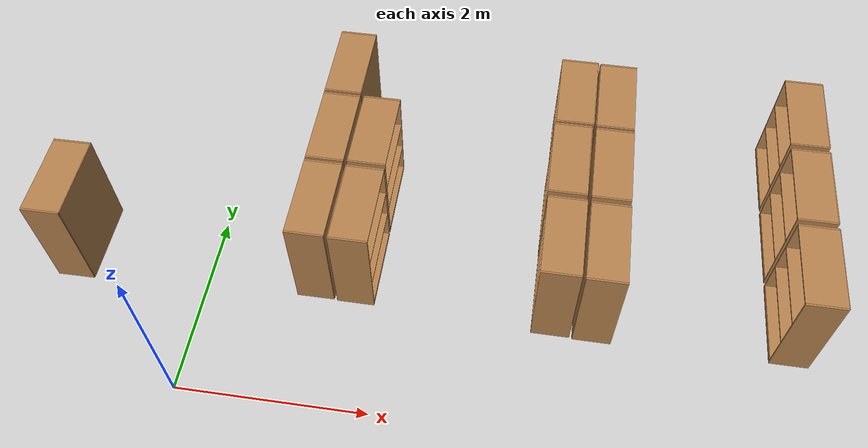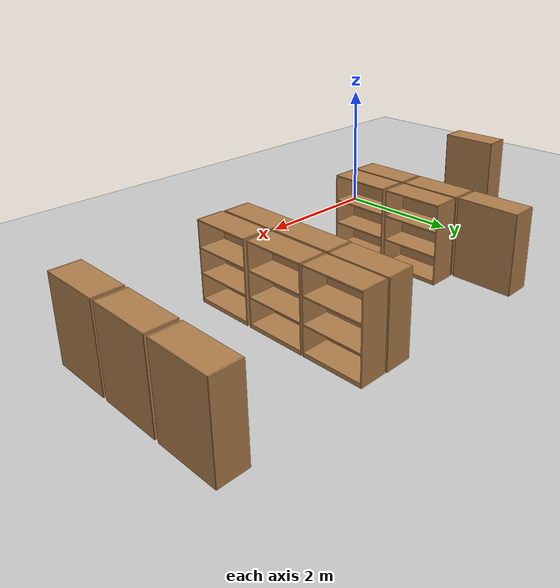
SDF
<sdf version="1.6">
 <world name="default">
  <model name="ground_plane">
   <static>1</static>
   <link name="link">
    <collision name="collision">
     <geometry><plane><normal>0 0 1</normal><size>100 100</size></plane></geometry>
     <surface>
      <contact><collide_bitmask>65535</collide_bitmask></contact>
      <friction><ode><mu>100</mu><mu2>50</mu2></ode></friction>
     </surface>
    </collision>
    <visual name="visual">
     <cast_shadows>0</cast_shadows>
     <geometry><plane><normal>0 0 1</normal><size>100 100</size></plane></geometry>
     <material>
      <script><uri>file://media/materials/scripts/gazebo.material</uri><name>Gazebo/Grey</name></script>
     </material>
    </visual>
   </link>
  </model>
  <model name="bookshelf_clone_9">
   <static>1</static>
   <link name="link">
    <inertial><mass>1</mass></inertial>
    <collision name="back">
     <pose>0 0.005 0.6 0 -0 0</pose>
     <geometry><box><size>0.9 0.01 1.2</size></box></geometry>
    </collision>
    <visual name="visual1">
     <pose>0 0.005 0.6 0 -0 0</pose>
     <geometry><box><size>0.9 0.01 1.2</size></box></geometry>
     <material>
      <script><uri>file://media/materials/scripts/gazebo.material</uri><name>Gazebo/Wood</name></script>
     </material>
    </visual>
    <collision name="left_side">
     <pose>0.45 -0.195 0.6 0 -0 0</pose>
     <geometry><box><size>0.02 0.4 1.2</size></box></geometry>
    </collision>
    <visual name="visual2">
     <pose>0.45 -0.195 0.6 0 -0 0</pose>
     <geometry><box><size>0.02 0.4 1.2</size></box></geometry>
     <material>
      <script><uri>file://media/materials/scripts/gazebo.material</uri><name>Gazebo/Wood</name></script>
     </material>
    </visual>
    <collision name="right_side">
     <pose>-0.45 -0.195 0.6 0 -0 0</pose>
     <geometry><box><size>0.02 0.4 1.2</size></box></geometry>
    </collision>
    <visual name="visual3">
     <pose>-0.45 -0.195 0.6 0 -0 0</pose>
     <geometry><box><size>0.02 0.4 1.2</size></box></geometry>
     <material>
      <script><uri>file://media/materials/scripts/gazebo.material</uri><name>Gazebo/Wood</name></script>
     </material>
    </visual>
    <collision name="bottom">
     <pose>0 -0.195 0.03 0 -0 0</pose>
     <geometry><box><size>0.88 0.4 0.06</size></box></geometry>
    </collision>
    <visual name="visual4">
     <pose>0 -0.195 0.03 0 -0 0</pose>
     <geometry><box><size>0.88 0.4 0.06</size></box></geometry>
     <material>
      <script><uri>file://media/materials/scripts/gazebo.material</uri><name>Gazebo/Wood</name></script>
     </material>
    </visual>
    <collision name="top">
     <pose>0 -0.195 1.19 0 -0 0</pose>
     <geometry><box><size>0.88 0.4 0.02</size></box></geometry>
    </collision>
    <visual name="visual5">
     <pose>0 -0.195 1.19 0 -0 0</pose>
     <geometry><box><size>0.88 0.4 0.02</size></box></geometry>
     <material>
      <script><uri>file://media/materials/scripts/gazebo.material</uri><name>Gazebo/Wood</name></script>
     </material>
    </visual>
    <collision name="low_shelf">
     <pose>0 -0.195 0.43 0 -0 0</pose>
     <geometry><box><size>0.88 0.4 0.02</size></box></geometry>
    </collision>
    <visual name="visual6">
     <pose>0 -0.195 0.43 0 -0 0</pose>
     <geometry><box><size>0.88 0.4 0.02</size></box></geometry>
     <material>
      <script><uri>file://media/materials/scripts/gazebo.material</uri><name>Gazebo/Wood</name></script>
     </material>
    </visual>
    <collision name="high_shelf">
     <pose>0 -0.195 0.8 0 -0 0</pose>
     <geometry><box><size>0.88 0.4 0.02</size></box></geometry>
    </collision>
    <visual name="visual7">
     <pose>0 -0.195 0.8 0 -0 0</pose>
     <geometry><box><size>0.88 0.4 0.02</size></box></geometry>
     <material>
      <script><uri>file://media/materials/scripts/gazebo.material</uri><name>Gazebo/Wood</name></script>
     </material>
    </visual>
   </link>
   <pose>-1.26454 1.58379 0 0 0 -1.56141</pose>
  </model>
  <model name="bookshelf_clone_102">
   <static>1</static>
   <link name="link">
    <inertial><mass>1</mass></inertial>
    <collision name="back">
     <pose>0 0.005 0.6 0 -0 0</pose>
     <geometry><box><size>0.9 0.01 1.2</size></box></geometry>
    </collision>
    <visual name="visual1">
     <pose>0 0.005 0.6 0 -0 0</pose>
     <geometry><box><size>0.9 0.01 1.2</size></box></geometry>
     <material>
      <script><uri>file://media/materials/scripts/gazebo.material</uri><name>Gazebo/Wood</name></script>
     </material>
    </visual>
    <collision name="left_side">
     <pose>0.45 -0.195 0.6 0 -0 0</pose>
     <geometry><box><size>0.02 0.4 1.2</size></box></geometry>
    </collision>
    <visual name="visual2">
     <pose>0.45 -0.195 0.6 0 -0 0</pose>
     <geometry><box><size>0.02 0.4 1.2</size></box></geometry>
     <material>
      <script><uri>file://media/materials/scripts/gazebo.material</uri><name>Gazebo/Wood</name></script>
     </material>
    </visual>
    <collision name="right_side">
     <pose>-0.45 -0.195 0.6 0 -0 0</pose>
     <geometry><box><size>0.02 0.4 1.2</size></box></geometry>
    </collision>
    <visual name="visual3">
     <pose>-0.45 -0.195 0.6 0 -0 0</pose>
     <geometry><box><size>0.02 0.4 1.2</size></box></geometry>
     <material>
      <script><uri>file://media/materials/scripts/gazebo.material</uri><name>Gazebo/Wood</name></script>
     </material>
    </visual>
    <collision name="bottom">
     <pose>0 -0.195 0.03 0 -0 0</pose>
     <geometry><box><size>0.88 0.4 0.06</size></box></geometry>
    </collision>
    <visual name="visual4">
     <pose>0 -0.195 0.03 0 -0 0</pose>
     <geometry><box><size>0.88 0.4 0.06</size></box></geometry>
     <material>
      <script><uri>file://media/materials/scripts/gazebo.material</uri><name>Gazebo/Wood</name></script>
     </material>
    </visual>
    <collision name="top">
     <pose>0 -0.195 1.19 0 -0 0</pose>
     <geometry><box><size>0.88 0.4 0.02</size></box></geometry>
    </collision>
    <visual name="visual5">
     <pose>0 -0.195 1.19 0 -0 0</pose>
     <geometry><box><size>0.88 0.4 0.02</size></box></geometry>
     <material>
      <script><uri>file://media/materials/scripts/gazebo.material</uri><name>Gazebo/Wood</name></script>
     </material>
    </visual>
    <collision name="low_shelf">
     <pose>0 -0.195 0.43 0 -0 0</pose>
     <geometry><box><size>0.88 0.4 0.02</size></box></geometry>
    </collision>
    <visual name="visual6">
     <pose>0 -0.195 0.43 0 -0 0</pose>
     <geometry><box><size>0.88 0.4 0.02</size></box></geometry>
     <material>
      <script><uri>file://media/materials/scripts/gazebo.material</uri><name>Gazebo/Wood</name></script>
     </material>
    </visual>
    <collision name="high_shelf">
     <pose>0 -0.195 0.8 0 -0 0</pose>
     <geometry><box><size>0.88 0.4 0.02</size></box></geometry>
    </collision>
    <visual name="visual7">
     <pose>0 -0.195 0.8 0 -0 0</pose>
     <geometry><box><size>0.88 0.4 0.02</size></box></geometry>
     <material>
      <script><uri>file://media/materials/scripts/gazebo.material</uri><name>Gazebo/Wood</name></script>
     </material>
    </visual>
   </link>
   <pose>1.37566 3.58937 0 0 0 -1.57004</pose>
  </model>
  <model name="bookshelf_clone_103">
   <static>1</static>
   <link name="link">
    <inertial><mass>1</mass></inertial>
    <collision name="back">
     <pose>0 0.005 0.6 0 -0 0</pose>
     <geometry><box><size>0.9 0.01 1.2</size></box></geometry>
    </collision>
    <visual name="visual1">
     <pose>0 0.005 0.6 0 -0 0</pose>
     <geometry><box><size>0.9 0.01 1.2</size></box></geometry>
     <material>
      <script><uri>file://media/materials/scripts/gazebo.material</uri><name>Gazebo/Wood</name></script>
     </material>
    </visual>
    <collision name="left_side">
     <pose>0.45 -0.195 0.6 0 -0 0</pose>
     <geometry><box><size>0.02 0.4 1.2</size></box></geometry>
    </collision>
    <visual name="visual2">
     <pose>0.45 -0.195 0.6 0 -0 0</pose>
     <geometry><box><size>0.02 0.4 1.2</size></box></geometry>
     <material>
      <script><uri>file://media/materials/scripts/gazebo.material</uri><name>Gazebo/Wood</name></script>
     </material>
    </visual>
    <collision name="right_side">
     <pose>-0.45 -0.195 0.6 0 -0 0</pose>
     <geometry><box><size>0.02 0.4 1.2</size></box></geometry>
    </collision>
    <visual name="visual3">
     <pose>-0.45 -0.195 0.6 0 -0 0</pose>
     <geometry><box><size>0.02 0.4 1.2</size></box></geometry>
     <material>
      <script><uri>file://media/materials/scripts/gazebo.material</uri><name>Gazebo/Wood</name></script>
     </material>
    </visual>
    <collision name="bottom">
     <pose>0 -0.195 0.03 0 -0 0</pose>
     <geometry><box><size>0.88 0.4 0.06</size></box></geometry>
    </collision>
    <visual name="visual4">
     <pose>0 -0.195 0.03 0 -0 0</pose>
     <geometry><box><size>0.88 0.4 0.06</size></box></geometry>
     <material>
      <script><uri>file://media/materials/scripts/gazebo.material</uri><name>Gazebo/Wood</name></script>
     </material>
    </visual>
    <collision name="top">
     <pose>0 -0.195 1.19 0 -0 0</pose>
     <geometry><box><size>0.88 0.4 0.02</size></box></geometry>
    </collision>
    <visual name="visual5">
     <pose>0 -0.195 1.19 0 -0 0</pose>
     <geometry><box><size>0.88 0.4 0.02</size></box></geometry>
     <material>
      <script><uri>file://media/materials/scripts/gazebo.material</uri><name>Gazebo/Wood</name></script>
     </material>
    </visual>
    <collision name="low_shelf">
     <pose>0 -0.195 0.43 0 -0 0</pose>
     <geometry><box><size>0.88 0.4 0.02</size></box></geometry>
    </collision>
    <visual name="visual6">
     <pose>0 -0.195 0.43 0 -0 0</pose>
     <geometry><box><size>0.88 0.4 0.02</size></box></geometry>
     <material>
      <script><uri>file://media/materials/scripts/gazebo.material</uri><name>Gazebo/Wood</name></script>
     </material>
    </visual>
    <collision name="high_shelf">
     <pose>0 -0.195 0.8 0 -0 0</pose>
     <geometry><box><size>0.88 0.4 0.02</size></box></geometry>
    </collision>
    <visual name="visual7">
     <pose>0 -0.195 0.8 0 -0 0</pose>
     <geometry><box><size>0.88 0.4 0.02</size></box></geometry>
     <material>
      <script><uri>file://media/materials/scripts/gazebo.material</uri><name>Gazebo/Wood</name></script>
     </material>
    </visual>
   </link>
   <pose>1.37773 2.64484 0 0 0 -1.57004</pose>
  </model>
  <model name="bookshelf_clone_104">
   <static>1</static>
   <link name="link">
    <inertial><mass>1</mass></inertial>
    <collision name="back">
     <pose>0 0.005 0.6 0 -0 0</pose>
     <geometry><box><size>0.9 0.01 1.2</size></box></geometry>
    </collision>
    <visual name="visual1">
     <pose>0 0.005 0.6 0 -0 0</pose>
     <geometry><box><size>0.9 0.01 1.2</size></box></geometry>
     <material>
      <script><uri>file://media/materials/scripts/gazebo.material</uri><name>Gazebo/Wood</name></script>
     </material>
    </visual>
    <collision name="left_side">
     <pose>0.45 -0.195 0.6 0 -0 0</pose>
     <geometry><box><size>0.02 0.4 1.2</size></box></geometry>
    </collision>
    <visual name="visual2">
     <pose>0.45 -0.195 0.6 0 -0 0</pose>
     <geometry><box><size>0.02 0.4 1.2</size></box></geometry>
     <material>
      <script><uri>file://media/materials/scripts/gazebo.material</uri><name>Gazebo/Wood</name></script>
     </material>
    </visual>
    <collision name="right_side">
     <pose>-0.45 -0.195 0.6 0 -0 0</pose>
     <geometry><box><size>0.02 0.4 1.2</size></box></geometry>
    </collision>
    <visual name="visual3">
     <pose>-0.45 -0.195 0.6 0 -0 0</pose>
     <geometry><box><size>0.02 0.4 1.2</size></box></geometry>
     <material>
      <script><uri>file://media/materials/scripts/gazebo.material</uri><name>Gazebo/Wood</name></script>
     </material>
    </visual>
    <collision name="bottom">
     <pose>0 -0.195 0.03 0 -0 0</pose>
     <geometry><box><size>0.88 0.4 0.06</size></box></geometry>
    </collision>
    <visual name="visual4">
     <pose>0 -0.195 0.03 0 -0 0</pose>
     <geometry><box><size>0.88 0.4 0.06</size></box></geometry>
     <material>
      <script><uri>file://media/materials/scripts/gazebo.material</uri><name>Gazebo/Wood</name></script>
     </material>
    </visual>
    <collision name="top">
     <pose>0 -0.195 1.19 0 -0 0</pose>
     <geometry><box><size>0.88 0.4 0.02</size></box></geometry>
    </collision>
    <visual name="visual5">
     <pose>0 -0.195 1.19 0 -0 0</pose>
     <geometry><box><size>0.88 0.4 0.02</size></box></geometry>
     <material>
      <script><uri>file://media/materials/scripts/gazebo.material</uri><name>Gazebo/Wood</name></script>
     </material>
    </visual>
    <collision name="low_shelf">
     <pose>0 -0.195 0.43 0 -0 0</pose>
     <geometry><box><size>0.88 0.4 0.02</size></box></geometry>
    </collision>
    <visual name="visual6">
     <pose>0 -0.195 0.43 0 -0 0</pose>
     <geometry><box><size>0.88 0.4 0.02</size></box></geometry>
     <material>
      <script><uri>file://media/materials/scripts/gazebo.material</uri><name>Gazebo/Wood</name></script>
     </material>
    </visual>
    <collision name="high_shelf">
     <pose>0 -0.195 0.8 0 -0 0</pose>
     <geometry><box><size>0.88 0.4 0.02</size></box></geometry>
    </collision>
    <visual name="visual7">
     <pose>0 -0.195 0.8 0 -0 0</pose>
     <geometry><box><size>0.88 0.4 0.02</size></box></geometry>
     <material>
      <script><uri>file://media/materials/scripts/gazebo.material</uri><name>Gazebo/Wood</name></script>
     </material>
    </visual>
   </link>
   <pose>1.37981 1.7003 0 0 0 -1.57004</pose>
  </model>
  <model name="bookshelf_clone_109">
   <static>1</static>
   <link name="link">
    <inertial><mass>1</mass></inertial>
    <collision name="back">
     <pose>0 0.005 0.6 0 -0 0</pose>
     <geometry><box><size>0.9 0.01 1.2</size></box></geometry>
    </collision>
    <visual name="visual1">
     <pose>0 0.005 0.6 0 -0 0</pose>
     <geometry><box><size>0.9 0.01 1.2</size></box></geometry>
     <material>
      <script><uri>file://media/materials/scripts/gazebo.material</uri><name>Gazebo/Wood</name></script>
     </material>
    </visual>
    <collision name="left_side">
     <pose>0.45 -0.195 0.6 0 -0 0</pose>
     <geometry><box><size>0.02 0.4 1.2</size></box></geometry>
    </collision>
    <visual name="visual2">
     <pose>0.45 -0.195 0.6 0 -0 0</pose>
     <geometry><box><size>0.02 0.4 1.2</size></box></geometry>
     <material>
      <script><uri>file://media/materials/scripts/gazebo.material</uri><name>Gazebo/Wood</name></script>
     </material>
    </visual>
    <collision name="right_side">
     <pose>-0.45 -0.195 0.6 0 -0 0</pose>
     <geometry><box><size>0.02 0.4 1.2</size></box></geometry>
    </collision>
    <visual name="visual3">
     <pose>-0.45 -0.195 0.6 0 -0 0</pose>
     <geometry><box><size>0.02 0.4 1.2</size></box></geometry>
     <material>
      <script><uri>file://media/materials/scripts/gazebo.material</uri><name>Gazebo/Wood</name></script>
     </material>
    </visual>
    <collision name="bottom">
     <pose>0 -0.195 0.03 0 -0 0</pose>
     <geometry><box><size>0.88 0.4 0.06</size></box></geometry>
    </collision>
    <visual name="visual4">
     <pose>0 -0.195 0.03 0 -0 0</pose>
     <geometry><box><size>0.88 0.4 0.06</size></box></geometry>
     <material>
      <script><uri>file://media/materials/scripts/gazebo.material</uri><name>Gazebo/Wood</name></script>
     </material>
    </visual>
    <collision name="top">
     <pose>0 -0.195 1.19 0 -0 0</pose>
     <geometry><box><size>0.88 0.4 0.02</size></box></geometry>
    </collision>
    <visual name="visual5">
     <pose>0 -0.195 1.19 0 -0 0</pose>
     <geometry><box><size>0.88 0.4 0.02</size></box></geometry>
     <material>
      <script><uri>file://media/materials/scripts/gazebo.material</uri><name>Gazebo/Wood</name></script>
     </material>
    </visual>
    <collision name="low_shelf">
     <pose>0 -0.195 0.43 0 -0 0</pose>
     <geometry><box><size>0.88 0.4 0.02</size></box></geometry>
    </collision>
    <visual name="visual6">
     <pose>0 -0.195 0.43 0 -0 0</pose>
     <geometry><box><size>0.88 0.4 0.02</size></box></geometry>
     <material>
      <script><uri>file://media/materials/scripts/gazebo.material</uri><name>Gazebo/Wood</name></script>
     </material>
    </visual>
    <collision name="high_shelf">
     <pose>0 -0.195 0.8 0 -0 0</pose>
     <geometry><box><size>0.88 0.4 0.02</size></box></geometry>
    </collision>
    <visual name="visual7">
     <pose>0 -0.195 0.8 0 -0 0</pose>
     <geometry><box><size>0.88 0.4 0.02</size></box></geometry>
     <material>
      <script><uri>file://media/materials/scripts/gazebo.material</uri><name>Gazebo/Wood</name></script>
     </material>
    </visual>
   </link>
   <pose>3.90591 3.51234 0 0 0 -1.57004</pose>
  </model>
  <model name="bookshelf_clone_110">
   <static>1</static>
   <link name="link">
    <inertial><mass>1</mass></inertial>
    <collision name="back">
     <pose>0 0.005 0.6 0 -0 0</pose>
     <geometry><box><size>0.9 0.01 1.2</size></box></geometry>
    </collision>
    <visual name="visual1">
     <pose>0 0.005 0.6 0 -0 0</pose>
     <geometry><box><size>0.9 0.01 1.2</size></box></geometry>
     <material>
      <script><uri>file://media/materials/scripts/gazebo.material</uri><name>Gazebo/Wood</name></script>
     </material>
    </visual>
    <collision name="left_side">
     <pose>0.45 -0.195 0.6 0 -0 0</pose>
     <geometry><box><size>0.02 0.4 1.2</size></box></geometry>
    </collision>
    <visual name="visual2">
     <pose>0.45 -0.195 0.6 0 -0 0</pose>
     <geometry><box><size>0.02 0.4 1.2</size></box></geometry>
     <material>
      <script><uri>file://media/materials/scripts/gazebo.material</uri><name>Gazebo/Wood</name></script>
     </material>
    </visual>
    <collision name="right_side">
     <pose>-0.45 -0.195 0.6 0 -0 0</pose>
     <geometry><box><size>0.02 0.4 1.2</size></box></geometry>
    </collision>
    <visual name="visual3">
     <pose>-0.45 -0.195 0.6 0 -0 0</pose>
     <geometry><box><size>0.02 0.4 1.2</size></box></geometry>
     <material>
      <script><uri>file://media/materials/scripts/gazebo.material</uri><name>Gazebo/Wood</name></script>
     </material>
    </visual>
    <collision name="bottom">
     <pose>0 -0.195 0.03 0 -0 0</pose>
     <geometry><box><size>0.88 0.4 0.06</size></box></geometry>
    </collision>
    <visual name="visual4">
     <pose>0 -0.195 0.03 0 -0 0</pose>
     <geometry><box><size>0.88 0.4 0.06</size></box></geometry>
     <material>
      <script><uri>file://media/materials/scripts/gazebo.material</uri><name>Gazebo/Wood</name></script>
     </material>
    </visual>
    <collision name="top">
     <pose>0 -0.195 1.19 0 -0 0</pose>
     <geometry><box><size>0.88 0.4 0.02</size></box></geometry>
    </collision>
    <visual name="visual5">
     <pose>0 -0.195 1.19 0 -0 0</pose>
     <geometry><box><size>0.88 0.4 0.02</size></box></geometry>
     <material>
      <script><uri>file://media/materials/scripts/gazebo.material</uri><name>Gazebo/Wood</name></script>
     </material>
    </visual>
    <collision name="low_shelf">
     <pose>0 -0.195 0.43 0 -0 0</pose>
     <geometry><box><size>0.88 0.4 0.02</size></box></geometry>
    </collision>
    <visual name="visual6">
     <pose>0 -0.195 0.43 0 -0 0</pose>
     <geometry><box><size>0.88 0.4 0.02</size></box></geometry>
     <material>
      <script><uri>file://media/materials/scripts/gazebo.material</uri><name>Gazebo/Wood</name></script>
     </material>
    </visual>
    <collision name="high_shelf">
     <pose>0 -0.195 0.8 0 -0 0</pose>
     <geometry><box><size>0.88 0.4 0.02</size></box></geometry>
    </collision>
    <visual name="visual7">
     <pose>0 -0.195 0.8 0 -0 0</pose>
     <geometry><box><size>0.88 0.4 0.02</size></box></geometry>
     <material>
      <script><uri>file://media/materials/scripts/gazebo.material</uri><name>Gazebo/Wood</name></script>
     </material>
    </visual>
   </link>
   <pose>3.89062 2.57464 0 0 0 -1.57004</pose>
  </model>
  <model name="bookshelf_clone_111">
   <static>1</static>
   <link name="link">
    <inertial><mass>1</mass></inertial>
    <collision name="back">
     <pose>0 0.005 0.6 0 -0 0</pose>
     <geometry><box><size>0.9 0.01 1.2</size></box></geometry>
    </collision>
    <visual name="visual1">
     <pose>0 0.005 0.6 0 -0 0</pose>
     <geometry><box><size>0.9 0.01 1.2</size></box></geometry>
     <material>
      <script><uri>file://media/materials/scripts/gazebo.material</uri><name>Gazebo/Wood</name></script>
     </material>
    </visual>
    <collision name="left_side">
     <pose>0.45 -0.195 0.6 0 -0 0</pose>
     <geometry><box><size>0.02 0.4 1.2</size></box></geometry>
    </collision>
    <visual name="visual2">
     <pose>0.45 -0.195 0.6 0 -0 0</pose>
     <geometry><box><size>0.02 0.4 1.2</size></box></geometry>
     <material>
      <script><uri>file://media/materials/scripts/gazebo.material</uri><name>Gazebo/Wood</name></script>
     </material>
    </visual>
    <collision name="right_side">
     <pose>-0.45 -0.195 0.6 0 -0 0</pose>
     <geometry><box><size>0.02 0.4 1.2</size></box></geometry>
    </collision>
    <visual name="visual3">
     <pose>-0.45 -0.195 0.6 0 -0 0</pose>
     <geometry><box><size>0.02 0.4 1.2</size></box></geometry>
     <material>
      <script><uri>file://media/materials/scripts/gazebo.material</uri><name>Gazebo/Wood</name></script>
     </material>
    </visual>
    <collision name="bottom">
     <pose>0 -0.195 0.03 0 -0 0</pose>
     <geometry><box><size>0.88 0.4 0.06</size></box></geometry>
    </collision>
    <visual name="visual4">
     <pose>0 -0.195 0.03 0 -0 0</pose>
     <geometry><box><size>0.88 0.4 0.06</size></box></geometry>
     <material>
      <script><uri>file://media/materials/scripts/gazebo.material</uri><name>Gazebo/Wood</name></script>
     </material>
    </visual>
    <collision name="top">
     <pose>0 -0.195 1.19 0 -0 0</pose>
     <geometry><box><size>0.88 0.4 0.02</size></box></geometry>
    </collision>
    <visual name="visual5">
     <pose>0 -0.195 1.19 0 -0 0</pose>
     <geometry><box><size>0.88 0.4 0.02</size></box></geometry>
     <material>
      <script><uri>file://media/materials/scripts/gazebo.material</uri><name>Gazebo/Wood</name></script>
     </material>
    </visual>
    <collision name="low_shelf">
     <pose>0 -0.195 0.43 0 -0 0</pose>
     <geometry><box><size>0.88 0.4 0.02</size></box></geometry>
    </collision>
    <visual name="visual6">
     <pose>0 -0.195 0.43 0 -0 0</pose>
     <geometry><box><size>0.88 0.4 0.02</size></box></geometry>
     <material>
      <script><uri>file://media/materials/scripts/gazebo.material</uri><name>Gazebo/Wood</name></script>
     </material>
    </visual>
    <collision name="high_shelf">
     <pose>0 -0.195 0.8 0 -0 0</pose>
     <geometry><box><size>0.88 0.4 0.02</size></box></geometry>
    </collision>
    <visual name="visual7">
     <pose>0 -0.195 0.8 0 -0 0</pose>
     <geometry><box><size>0.88 0.4 0.02</size></box></geometry>
     <material>
      <script><uri>file://media/materials/scripts/gazebo.material</uri><name>Gazebo/Wood</name></script>
     </material>
    </visual>
   </link>
   <pose>3.89594 1.60842 0 0 0 -1.57004</pose>
  </model>
  <model name="bookshelf_clone_116">
   <static>1</static>
   <link name="link">
    <inertial><mass>1</mass></inertial>
    <collision name="back">
     <pose>0 0.005 0.6 0 -0 0</pose>
     <geometry><box><size>0.9 0.01 1.2</size></box></geometry>
    </collision>
    <visual name="visual1">
     <pose>0 0.005 0.6 0 -0 0</pose>
     <geometry><box><size>0.9 0.01 1.2</size></box></geometry>
     <material>
      <script><uri>file://media/materials/scripts/gazebo.material</uri><name>Gazebo/Wood</name></script>
     </material>
    </visual>
    <collision name="left_side">
     <pose>0.45 -0.195 0.6 0 -0 0</pose>
     <geometry><box><size>0.02 0.4 1.2</size></box></geometry>
    </collision>
    <visual name="visual2">
     <pose>0.45 -0.195 0.6 0 -0 0</pose>
     <geometry><box><size>0.02 0.4 1.2</size></box></geometry>
     <material>
      <script><uri>file://media/materials/scripts/gazebo.material</uri><name>Gazebo/Wood</name></script>
     </material>
    </visual>
    <collision name="right_side">
     <pose>-0.45 -0.195 0.6 0 -0 0</pose>
     <geometry><box><size>0.02 0.4 1.2</size></box></geometry>
    </collision>
    <visual name="visual3">
     <pose>-0.45 -0.195 0.6 0 -0 0</pose>
     <geometry><box><size>0.02 0.4 1.2</size></box></geometry>
     <material>
      <script><uri>file://media/materials/scripts/gazebo.material</uri><name>Gazebo/Wood</name></script>
     </material>
    </visual>
    <collision name="bottom">
     <pose>0 -0.195 0.03 0 -0 0</pose>
     <geometry><box><size>0.88 0.4 0.06</size></box></geometry>
    </collision>
    <visual name="visual4">
     <pose>0 -0.195 0.03 0 -0 0</pose>
     <geometry><box><size>0.88 0.4 0.06</size></box></geometry>
     <material>
      <script><uri>file://media/materials/scripts/gazebo.material</uri><name>Gazebo/Wood</name></script>
     </material>
    </visual>
    <collision name="top">
     <pose>0 -0.195 1.19 0 -0 0</pose>
     <geometry><box><size>0.88 0.4 0.02</size></box></geometry>
    </collision>
    <visual name="visual5">
     <pose>0 -0.195 1.19 0 -0 0</pose>
     <geometry><box><size>0.88 0.4 0.02</size></box></geometry>
     <material>
      <script><uri>file://media/materials/scripts/gazebo.material</uri><name>Gazebo/Wood</name></script>
     </material>
    </visual>
    <collision name="low_shelf">
     <pose>0 -0.195 0.43 0 -0 0</pose>
     <geometry><box><size>0.88 0.4 0.02</size></box></geometry>
    </collision>
    <visual name="visual6">
     <pose>0 -0.195 0.43 0 -0 0</pose>
     <geometry><box><size>0.88 0.4 0.02</size></box></geometry>
     <material>
      <script><uri>file://media/materials/scripts/gazebo.material</uri><name>Gazebo/Wood</name></script>
     </material>
    </visual>
    <collision name="high_shelf">
     <pose>0 -0.195 0.8 0 -0 0</pose>
     <geometry><box><size>0.88 0.4 0.02</size></box></geometry>
    </collision>
    <visual name="visual7">
     <pose>0 -0.195 0.8 0 -0 0</pose>
     <geometry><box><size>0.88 0.4 0.02</size></box></geometry>
     <material>
      <script><uri>file://media/materials/scripts/gazebo.material</uri><name>Gazebo/Wood</name></script>
     </material>
    </visual>
   </link>
   <pose>6.34368 3.5484 0 0 0 -1.57004</pose>
  </model>
  <model name="bookshelf_clone_117">
   <static>1</static>
   <link name="link">
    <inertial><mass>1</mass></inertial>
    <collision name="back">
     <pose>0 0.005 0.6 0 -0 0</pose>
     <geometry><box><size>0.9 0.01 1.2</size></box></geometry>
    </collision>
    <visual name="visual1">
     <pose>0 0.005 0.6 0 -0 0</pose>
     <geometry><box><size>0.9 0.01 1.2</size></box></geometry>
     <material>
      <script><uri>file://media/materials/scripts/gazebo.material</uri><name>Gazebo/Wood</name></script>
     </material>
    </visual>
    <collision name="left_side">
     <pose>0.45 -0.195 0.6 0 -0 0</pose>
     <geometry><box><size>0.02 0.4 1.2</size></box></geometry>
    </collision>
    <visual name="visual2">
     <pose>0.45 -0.195 0.6 0 -0 0</pose>
     <geometry><box><size>0.02 0.4 1.2</size></box></geometry>
     <material>
      <script><uri>file://media/materials/scripts/gazebo.material</uri><name>Gazebo/Wood</name></script>
     </material>
    </visual>
    <collision name="right_side">
     <pose>-0.45 -0.195 0.6 0 -0 0</pose>
     <geometry><box><size>0.02 0.4 1.2</size></box></geometry>
    </collision>
    <visual name="visual3">
     <pose>-0.45 -0.195 0.6 0 -0 0</pose>
     <geometry><box><size>0.02 0.4 1.2</size></box></geometry>
     <material>
      <script><uri>file://media/materials/scripts/gazebo.material</uri><name>Gazebo/Wood</name></script>
     </material>
    </visual>
    <collision name="bottom">
     <pose>0 -0.195 0.03 0 -0 0</pose>
     <geometry><box><size>0.88 0.4 0.06</size></box></geometry>
    </collision>
    <visual name="visual4">
     <pose>0 -0.195 0.03 0 -0 0</pose>
     <geometry><box><size>0.88 0.4 0.06</size></box></geometry>
     <material>
      <script><uri>file://media/materials/scripts/gazebo.material</uri><name>Gazebo/Wood</name></script>
     </material>
    </visual>
    <collision name="top">
     <pose>0 -0.195 1.19 0 -0 0</pose>
     <geometry><box><size>0.88 0.4 0.02</size></box></geometry>
    </collision>
    <visual name="visual5">
     <pose>0 -0.195 1.19 0 -0 0</pose>
     <geometry><box><size>0.88 0.4 0.02</size></box></geometry>
     <material>
      <script><uri>file://media/materials/scripts/gazebo.material</uri><name>Gazebo/Wood</name></script>
     </material>
    </visual>
    <collision name="low_shelf">
     <pose>0 -0.195 0.43 0 -0 0</pose>
     <geometry><box><size>0.88 0.4 0.02</size></box></geometry>
    </collision>
    <visual name="visual6">
     <pose>0 -0.195 0.43 0 -0 0</pose>
     <geometry><box><size>0.88 0.4 0.02</size></box></geometry>
     <material>
      <script><uri>file://media/materials/scripts/gazebo.material</uri><name>Gazebo/Wood</name></script>
     </material>
    </visual>
    <collision name="high_shelf">
     <pose>0 -0.195 0.8 0 -0 0</pose>
     <geometry><box><size>0.88 0.4 0.02</size></box></geometry>
    </collision>
    <visual name="visual7">
     <pose>0 -0.195 0.8 0 -0 0</pose>
     <geometry><box><size>0.88 0.4 0.02</size></box></geometry>
     <material>
      <script><uri>file://media/materials/scripts/gazebo.material</uri><name>Gazebo/Wood</name></script>
     </material>
    </visual>
   </link>
   <pose>6.34372 2.58136 0 0 0 -1.57004</pose>
  </model>
  <model name="bookshelf_clone_118">
   <static>1</static>
   <link name="link">
    <inertial><mass>1</mass></inertial>
    <collision name="back">
     <pose>0 0.005 0.6 0 -0 0</pose>
     <geometry><box><size>0.9 0.01 1.2</size></box></geometry>
    </collision>
    <visual name="visual1">
     <pose>0 0.005 0.6 0 -0 0</pose>
     <geometry><box><size>0.9 0.01 1.2</size></box></geometry>
     <material>
      <script><uri>file://media/materials/scripts/gazebo.material</uri><name>Gazebo/Wood</name></script>
     </material>
    </visual>
    <collision name="left_side">
     <pose>0.45 -0.195 0.6 0 -0 0</pose>
     <geometry><box><size>0.02 0.4 1.2</size></box></geometry>
    </collision>
    <visual name="visual2">
     <pose>0.45 -0.195 0.6 0 -0 0</pose>
     <geometry><box><size>0.02 0.4 1.2</size></box></geometry>
     <material>
      <script><uri>file://media/materials/scripts/gazebo.material</uri><name>Gazebo/Wood</name></script>
     </material>
    </visual>
    <collision name="right_side">
     <pose>-0.45 -0.195 0.6 0 -0 0</pose>
     <geometry><box><size>0.02 0.4 1.2</size></box></geometry>
    </collision>
    <visual name="visual3">
     <pose>-0.45 -0.195 0.6 0 -0 0</pose>
     <geometry><box><size>0.02 0.4 1.2</size></box></geometry>
     <material>
      <script><uri>file://media/materials/scripts/gazebo.material</uri><name>Gazebo/Wood</name></script>
     </material>
    </visual>
    <collision name="bottom">
     <pose>0 -0.195 0.03 0 -0 0</pose>
     <geometry><box><size>0.88 0.4 0.06</size></box></geometry>
    </collision>
    <visual name="visual4">
     <pose>0 -0.195 0.03 0 -0 0</pose>
     <geometry><box><size>0.88 0.4 0.06</size></box></geometry>
     <material>
      <script><uri>file://media/materials/scripts/gazebo.material</uri><name>Gazebo/Wood</name></script>
     </material>
    </visual>
    <collision name="top">
     <pose>0 -0.195 1.19 0 -0 0</pose>
     <geometry><box><size>0.88 0.4 0.02</size></box></geometry>
    </collision>
    <visual name="visual5">
     <pose>0 -0.195 1.19 0 -0 0</pose>
     <geometry><box><size>0.88 0.4 0.02</size></box></geometry>
     <material>
      <script><uri>file://media/materials/scripts/gazebo.material</uri><name>Gazebo/Wood</name></script>
     </material>
    </visual>
    <collision name="low_shelf">
     <pose>0 -0.195 0.43 0 -0 0</pose>
     <geometry><box><size>0.88 0.4 0.02</size></box></geometry>
    </collision>
    <visual name="visual6">
     <pose>0 -0.195 0.43 0 -0 0</pose>
     <geometry><box><size>0.88 0.4 0.02</size></box></geometry>
     <material>
      <script><uri>file://media/materials/scripts/gazebo.material</uri><name>Gazebo/Wood</name></script>
     </material>
    </visual>
    <collision name="high_shelf">
     <pose>0 -0.195 0.8 0 -0 0</pose>
     <geometry><box><size>0.88 0.4 0.02</size></box></geometry>
    </collision>
    <visual name="visual7">
     <pose>0 -0.195 0.8 0 -0 0</pose>
     <geometry><box><size>0.88 0.4 0.02</size></box></geometry>
     <material>
      <script><uri>file://media/materials/scripts/gazebo.material</uri><name>Gazebo/Wood</name></script>
     </material>
    </visual>
   </link>
   <pose>6.34379 1.61431 0 0 0 -1.57004</pose>
  </model>
  <model name="bookshelf_clone_125">
   <static>1</static>
   <link name="link">
    <inertial><mass>1</mass></inertial>
    <collision name="back">
     <pose>0 0.005 0.6 0 -0 0</pose>
     <geometry><box><size>0.9 0.01 1.2</size></box></geometry>
    </collision>
    <visual name="visual1">
     <pose>0 0.005 0.6 0 -0 0</pose>
     <geometry><box><size>0.9 0.01 1.2</size></box></geometry>
     <material>
      <script><uri>file://media/materials/scripts/gazebo.material</uri><name>Gazebo/Wood</name></script>
     </material>
    </visual>
    <collision name="left_side">
     <pose>0.45 -0.195 0.6 0 -0 0</pose>
     <geometry><box><size>0.02 0.4 1.2</size></box></geometry>
    </collision>
    <visual name="visual2">
     <pose>0.45 -0.195 0.6 0 -0 0</pose>
     <geometry><box><size>0.02 0.4 1.2</size></box></geometry>
     <material>
      <script><uri>file://media/materials/scripts/gazebo.material</uri><name>Gazebo/Wood</name></script>
     </material>
    </visual>
    <collision name="right_side">
     <pose>-0.45 -0.195 0.6 0 -0 0</pose>
     <geometry><box><size>0.02 0.4 1.2</size></box></geometry>
    </collision>
    <visual name="visual3">
     <pose>-0.45 -0.195 0.6 0 -0 0</pose>
     <geometry><box><size>0.02 0.4 1.2</size></box></geometry>
     <material>
      <script><uri>file://media/materials/scripts/gazebo.material</uri><name>Gazebo/Wood</name></script>
     </material>
    </visual>
    <collision name="bottom">
     <pose>0 -0.195 0.03 0 -0 0</pose>
     <geometry><box><size>0.88 0.4 0.06</size></box></geometry>
    </collision>
    <visual name="visual4">
     <pose>0 -0.195 0.03 0 -0 0</pose>
     <geometry><box><size>0.88 0.4 0.06</size></box></geometry>
     <material>
      <script><uri>file://media/materials/scripts/gazebo.material</uri><name>Gazebo/Wood</name></script>
     </material>
    </visual>
    <collision name="top">
     <pose>0 -0.195 1.19 0 -0 0</pose>
     <geometry><box><size>0.88 0.4 0.02</size></box></geometry>
    </collision>
    <visual name="visual5">
     <pose>0 -0.195 1.19 0 -0 0</pose>
     <geometry><box><size>0.88 0.4 0.02</size></box></geometry>
     <material>
      <script><uri>file://media/materials/scripts/gazebo.material</uri><name>Gazebo/Wood</name></script>
     </material>
    </visual>
    <collision name="low_shelf">
     <pose>0 -0.195 0.43 0 -0 0</pose>
     <geometry><box><size>0.88 0.4 0.02</size></box></geometry>
    </collision>
    <visual name="visual6">
     <pose>0 -0.195 0.43 0 -0 0</pose>
     <geometry><box><size>0.88 0.4 0.02</size></box></geometry>
     <material>
      <script><uri>file://media/materials/scripts/gazebo.material</uri><name>Gazebo/Wood</name></script>
     </material>
    </visual>
    <collision name="high_shelf">
     <pose>0 -0.195 0.8 0 -0 0</pose>
     <geometry><box><size>0.88 0.4 0.02</size></box></geometry>
    </collision>
    <visual name="visual7">
     <pose>0 -0.195 0.8 0 -0 0</pose>
     <geometry><box><size>0.88 0.4 0.02</size></box></geometry>
     <material>
      <script><uri>file://media/materials/scripts/gazebo.material</uri><name>Gazebo/Wood</name></script>
     </material>
    </visual>
   </link>
   <pose>1.42833 2.65086 0 0 -0 1.56949</pose>
  </model>
  <model name="bookshelf_clone_126">
   <static>1</static>
   <link name="link">
    <inertial><mass>1</mass></inertial>
    <collision name="back">
     <pose>0 0.005 0.6 0 -0 0</pose>
     <geometry><box><size>0.9 0.01 1.2</size></box></geometry>
    </collision>
    <visual name="visual1">
     <pose>0 0.005 0.6 0 -0 0</pose>
     <geometry><box><size>0.9 0.01 1.2</size></box></geometry>
     <material>
      <script><uri>file://media/materials/scripts/gazebo.material</uri><name>Gazebo/Wood</name></script>
     </material>
    </visual>
    <collision name="left_side">
     <pose>0.45 -0.195 0.6 0 -0 0</pose>
     <geometry><box><size>0.02 0.4 1.2</size></box></geometry>
    </collision>
    <visual name="visual2">
     <pose>0.45 -0.195 0.6 0 -0 0</pose>
     <geometry><box><size>0.02 0.4 1.2</size></box></geometry>
     <material>
      <script><uri>file://media/materials/scripts/gazebo.material</uri><name>Gazebo/Wood</name></script>
     </material>
    </visual>
    <collision name="right_side">
     <pose>-0.45 -0.195 0.6 0 -0 0</pose>
     <geometry><box><size>0.02 0.4 1.2</size></box></geometry>
    </collision>
    <visual name="visual3">
     <pose>-0.45 -0.195 0.6 0 -0 0</pose>
     <geometry><box><size>0.02 0.4 1.2</size></box></geometry>
     <material>
      <script><uri>file://media/materials/scripts/gazebo.material</uri><name>Gazebo/Wood</name></script>
     </material>
    </visual>
    <collision name="bottom">
     <pose>0 -0.195 0.03 0 -0 0</pose>
     <geometry><box><size>0.88 0.4 0.06</size></box></geometry>
    </collision>
    <visual name="visual4">
     <pose>0 -0.195 0.03 0 -0 0</pose>
     <geometry><box><size>0.88 0.4 0.06</size></box></geometry>
     <material>
      <script><uri>file://media/materials/scripts/gazebo.material</uri><name>Gazebo/Wood</name></script>
     </material>
    </visual>
    <collision name="top">
     <pose>0 -0.195 1.19 0 -0 0</pose>
     <geometry><box><size>0.88 0.4 0.02</size></box></geometry>
    </collision>
    <visual name="visual5">
     <pose>0 -0.195 1.19 0 -0 0</pose>
     <geometry><box><size>0.88 0.4 0.02</size></box></geometry>
     <material>
      <script><uri>file://media/materials/scripts/gazebo.material</uri><name>Gazebo/Wood</name></script>
     </material>
    </visual>
    <collision name="low_shelf">
     <pose>0 -0.195 0.43 0 -0 0</pose>
     <geometry><box><size>0.88 0.4 0.02</size></box></geometry>
    </collision>
    <visual name="visual6">
     <pose>0 -0.195 0.43 0 -0 0</pose>
     <geometry><box><size>0.88 0.4 0.02</size></box></geometry>
     <material>
      <script><uri>file://media/materials/scripts/gazebo.material</uri><name>Gazebo/Wood</name></script>
     </material>
    </visual>
    <collision name="high_shelf">
     <pose>0 -0.195 0.8 0 -0 0</pose>
     <geometry><box><size>0.88 0.4 0.02</size></box></geometry>
    </collision>
    <visual name="visual7">
     <pose>0 -0.195 0.8 0 -0 0</pose>
     <geometry><box><size>0.88 0.4 0.02</size></box></geometry>
     <material>
      <script><uri>file://media/materials/scripts/gazebo.material</uri><name>Gazebo/Wood</name></script>
     </material>
    </visual>
   </link>
   <pose>1.42833 1.69174 0 0 -0 1.56949</pose>
  </model>
  <model name="bookshelf_clone_132">
   <static>1</static>
   <link name="link">
    <inertial><mass>1</mass></inertial>
    <collision name="back">
     <pose>0 0.005 0.6 0 -0 0</pose>
     <geometry><box><size>0.9 0.01 1.2</size></box></geometry>
    </collision>
    <visual name="visual1">
     <pose>0 0.005 0.6 0 -0 0</pose>
     <geometry><box><size>0.9 0.01 1.2</size></box></geometry>
     <material>
      <script><uri>file://media/materials/scripts/gazebo.material</uri><name>Gazebo/Wood</name></script>
     </material>
    </visual>
    <collision name="left_side">
     <pose>0.45 -0.195 0.6 0 -0 0</pose>
     <geometry><box><size>0.02 0.4 1.2</size></box></geometry>
    </collision>
    <visual name="visual2">
     <pose>0.45 -0.195 0.6 0 -0 0</pose>
     <geometry><box><size>0.02 0.4 1.2</size></box></geometry>
     <material>
      <script><uri>file://media/materials/scripts/gazebo.material</uri><name>Gazebo/Wood</name></script>
     </material>
    </visual>
    <collision name="right_side">
     <pose>-0.45 -0.195 0.6 0 -0 0</pose>
     <geometry><box><size>0.02 0.4 1.2</size></box></geometry>
    </collision>
    <visual name="visual3">
     <pose>-0.45 -0.195 0.6 0 -0 0</pose>
     <geometry><box><size>0.02 0.4 1.2</size></box></geometry>
     <material>
      <script><uri>file://media/materials/scripts/gazebo.material</uri><name>Gazebo/Wood</name></script>
     </material>
    </visual>
    <collision name="bottom">
     <pose>0 -0.195 0.03 0 -0 0</pose>
     <geometry><box><size>0.88 0.4 0.06</size></box></geometry>
    </collision>
    <visual name="visual4">
     <pose>0 -0.195 0.03 0 -0 0</pose>
     <geometry><box><size>0.88 0.4 0.06</size></box></geometry>
     <material>
      <script><uri>file://media/materials/scripts/gazebo.material</uri><name>Gazebo/Wood</name></script>
     </material>
    </visual>
    <collision name="top">
     <pose>0 -0.195 1.19 0 -0 0</pose>
     <geometry><box><size>0.88 0.4 0.02</size></box></geometry>
    </collision>
    <visual name="visual5">
     <pose>0 -0.195 1.19 0 -0 0</pose>
     <geometry><box><size>0.88 0.4 0.02</size></box></geometry>
     <material>
      <script><uri>file://media/materials/scripts/gazebo.material</uri><name>Gazebo/Wood</name></script>
     </material>
    </visual>
    <collision name="low_shelf">
     <pose>0 -0.195 0.43 0 -0 0</pose>
     <geometry><box><size>0.88 0.4 0.02</size></box></geometry>
    </collision>
    <visual name="visual6">
     <pose>0 -0.195 0.43 0 -0 0</pose>
     <geometry><box><size>0.88 0.4 0.02</size></box></geometry>
     <material>
      <script><uri>file://media/materials/scripts/gazebo.material</uri><name>Gazebo/Wood</name></script>
     </material>
    </visual>
    <collision name="high_shelf">
     <pose>0 -0.195 0.8 0 -0 0</pose>
     <geometry><box><size>0.88 0.4 0.02</size></box></geometry>
    </collision>
    <visual name="visual7">
     <pose>0 -0.195 0.8 0 -0 0</pose>
     <geometry><box><size>0.88 0.4 0.02</size></box></geometry>
     <material>
      <script><uri>file://media/materials/scripts/gazebo.material</uri><name>Gazebo/Wood</name></script>
     </material>
    </visual>
   </link>
   <pose>3.94205 3.502 0 0 -0 1.56949</pose>
  </model>
  <model name="bookshelf_clone_133">
   <static>1</static>
   <link name="link">
    <inertial><mass>1</mass></inertial>
    <collision name="back">
     <pose>0 0.005 0.6 0 -0 0</pose>
     <geometry><box><size>0.9 0.01 1.2</size></box></geometry>
    </collision>
    <visual name="visual1">
     <pose>0 0.005 0.6 0 -0 0</pose>
     <geometry><box><size>0.9 0.01 1.2</size></box></geometry>
     <material>
      <script><uri>file://media/materials/scripts/gazebo.material</uri><name>Gazebo/Wood</name></script>
     </material>
    </visual>
    <collision name="left_side">
     <pose>0.45 -0.195 0.6 0 -0 0</pose>
     <geometry><box><size>0.02 0.4 1.2</size></box></geometry>
    </collision>
    <visual name="visual2">
     <pose>0.45 -0.195 0.6 0 -0 0</pose>
     <geometry><box><size>0.02 0.4 1.2</size></box></geometry>
     <material>
      <script><uri>file://media/materials/scripts/gazebo.material</uri><name>Gazebo/Wood</name></script>
     </material>
    </visual>
    <collision name="right_side">
     <pose>-0.45 -0.195 0.6 0 -0 0</pose>
     <geometry><box><size>0.02 0.4 1.2</size></box></geometry>
    </collision>
    <visual name="visual3">
     <pose>-0.45 -0.195 0.6 0 -0 0</pose>
     <geometry><box><size>0.02 0.4 1.2</size></box></geometry>
     <material>
      <script><uri>file://media/materials/scripts/gazebo.material</uri><name>Gazebo/Wood</name></script>
     </material>
    </visual>
    <collision name="bottom">
     <pose>0 -0.195 0.03 0 -0 0</pose>
     <geometry><box><size>0.88 0.4 0.06</size></box></geometry>
    </collision>
    <visual name="visual4">
     <pose>0 -0.195 0.03 0 -0 0</pose>
     <geometry><box><size>0.88 0.4 0.06</size></box></geometry>
     <material>
      <script><uri>file://media/materials/scripts/gazebo.material</uri><name>Gazebo/Wood</name></script>
     </material>
    </visual>
    <collision name="top">
     <pose>0 -0.195 1.19 0 -0 0</pose>
     <geometry><box><size>0.88 0.4 0.02</size></box></geometry>
    </collision>
    <visual name="visual5">
     <pose>0 -0.195 1.19 0 -0 0</pose>
     <geometry><box><size>0.88 0.4 0.02</size></box></geometry>
     <material>
      <script><uri>file://media/materials/scripts/gazebo.material</uri><name>Gazebo/Wood</name></script>
     </material>
    </visual>
    <collision name="low_shelf">
     <pose>0 -0.195 0.43 0 -0 0</pose>
     <geometry><box><size>0.88 0.4 0.02</size></box></geometry>
    </collision>
    <visual name="visual6">
     <pose>0 -0.195 0.43 0 -0 0</pose>
     <geometry><box><size>0.88 0.4 0.02</size></box></geometry>
     <material>
      <script><uri>file://media/materials/scripts/gazebo.material</uri><name>Gazebo/Wood</name></script>
     </material>
    </visual>
    <collision name="high_shelf">
     <pose>0 -0.195 0.8 0 -0 0</pose>
     <geometry><box><size>0.88 0.4 0.02</size></box></geometry>
    </collision>
    <visual name="visual7">
     <pose>0 -0.195 0.8 0 -0 0</pose>
     <geometry><box><size>0.88 0.4 0.02</size></box></geometry>
     <material>
      <script><uri>file://media/materials/scripts/gazebo.material</uri><name>Gazebo/Wood</name></script>
     </material>
    </visual>
   </link>
   <pose>3.94205 2.56441 0 0 -0 1.56949</pose>
  </model>
  <model name="bookshelf_clone_134">
   <static>1</static>
   <link name="link">
    <inertial><mass>1</mass></inertial>
    <collision name="back">
     <pose>0 0.005 0.6 0 -0 0</pose>
     <geometry><box><size>0.9 0.01 1.2</size></box></geometry>
    </collision>
    <visual name="visual1">
     <pose>0 0.005 0.6 0 -0 0</pose>
     <geometry><box><size>0.9 0.01 1.2</size></box></geometry>
     <material>
      <script><uri>file://media/materials/scripts/gazebo.material</uri><name>Gazebo/Wood</name></script>
     </material>
    </visual>
    <collision name="left_side">
     <pose>0.45 -0.195 0.6 0 -0 0</pose>
     <geometry><box><size>0.02 0.4 1.2</size></box></geometry>
    </collision>
    <visual name="visual2">
     <pose>0.45 -0.195 0.6 0 -0 0</pose>
     <geometry><box><size>0.02 0.4 1.2</size></box></geometry>
     <material>
      <script><uri>file://media/materials/scripts/gazebo.material</uri><name>Gazebo/Wood</name></script>
     </material>
    </visual>
    <collision name="right_side">
     <pose>-0.45 -0.195 0.6 0 -0 0</pose>
     <geometry><box><size>0.02 0.4 1.2</size></box></geometry>
    </collision>
    <visual name="visual3">
     <pose>-0.45 -0.195 0.6 0 -0 0</pose>
     <geometry><box><size>0.02 0.4 1.2</size></box></geometry>
     <material>
      <script><uri>file://media/materials/scripts/gazebo.material</uri><name>Gazebo/Wood</name></script>
     </material>
    </visual>
    <collision name="bottom">
     <pose>0 -0.195 0.03 0 -0 0</pose>
     <geometry><box><size>0.88 0.4 0.06</size></box></geometry>
    </collision>
    <visual name="visual4">
     <pose>0 -0.195 0.03 0 -0 0</pose>
     <geometry><box><size>0.88 0.4 0.06</size></box></geometry>
     <material>
      <script><uri>file://media/materials/scripts/gazebo.material</uri><name>Gazebo/Wood</name></script>
     </material>
    </visual>
    <collision name="top">
     <pose>0 -0.195 1.19 0 -0 0</pose>
     <geometry><box><size>0.88 0.4 0.02</size></box></geometry>
    </collision>
    <visual name="visual5">
     <pose>0 -0.195 1.19 0 -0 0</pose>
     <geometry><box><size>0.88 0.4 0.02</size></box></geometry>
     <material>
      <script><uri>file://media/materials/scripts/gazebo.material</uri><name>Gazebo/Wood</name></script>
     </material>
    </visual>
    <collision name="low_shelf">
     <pose>0 -0.195 0.43 0 -0 0</pose>
     <geometry><box><size>0.88 0.4 0.02</size></box></geometry>
    </collision>
    <visual name="visual6">
     <pose>0 -0.195 0.43 0 -0 0</pose>
     <geometry><box><size>0.88 0.4 0.02</size></box></geometry>
     <material>
      <script><uri>file://media/materials/scripts/gazebo.material</uri><name>Gazebo/Wood</name></script>
     </material>
    </visual>
    <collision name="high_shelf">
     <pose>0 -0.195 0.8 0 -0 0</pose>
     <geometry><box><size>0.88 0.4 0.02</size></box></geometry>
    </collision>
    <visual name="visual7">
     <pose>0 -0.195 0.8 0 -0 0</pose>
     <geometry><box><size>0.88 0.4 0.02</size></box></geometry>
     <material>
      <script><uri>file://media/materials/scripts/gazebo.material</uri><name>Gazebo/Wood</name></script>
     </material>
    </visual>
   </link>
   <pose>3.94205 1.59528 0 0 -0 1.56949</pose>
  </model>
 </world>
</sdf>
